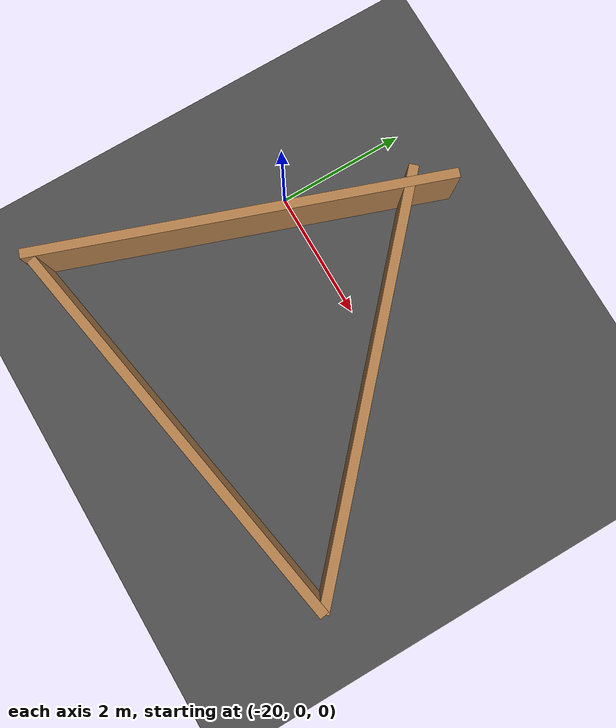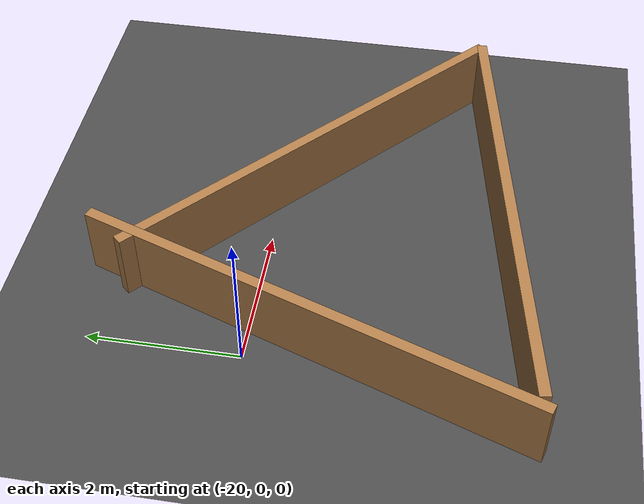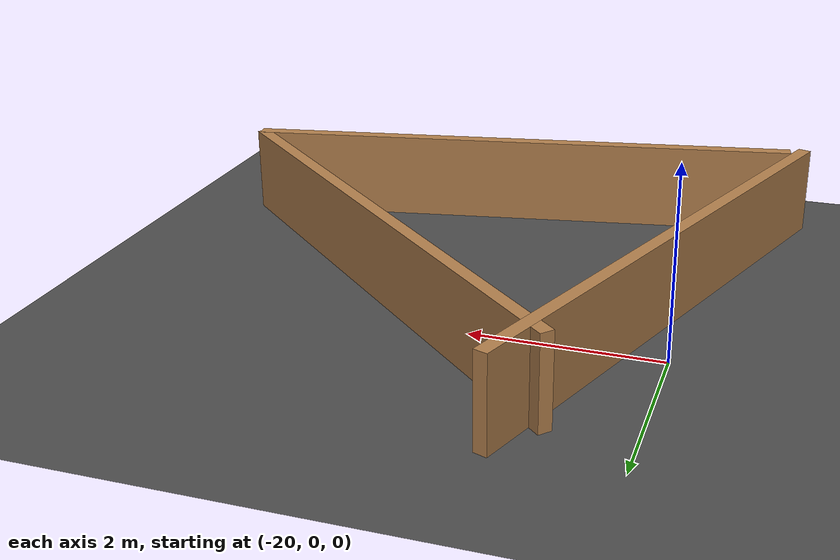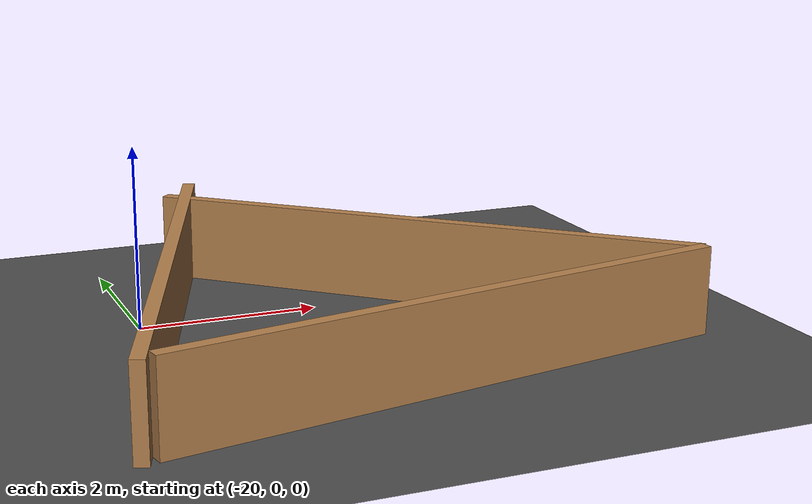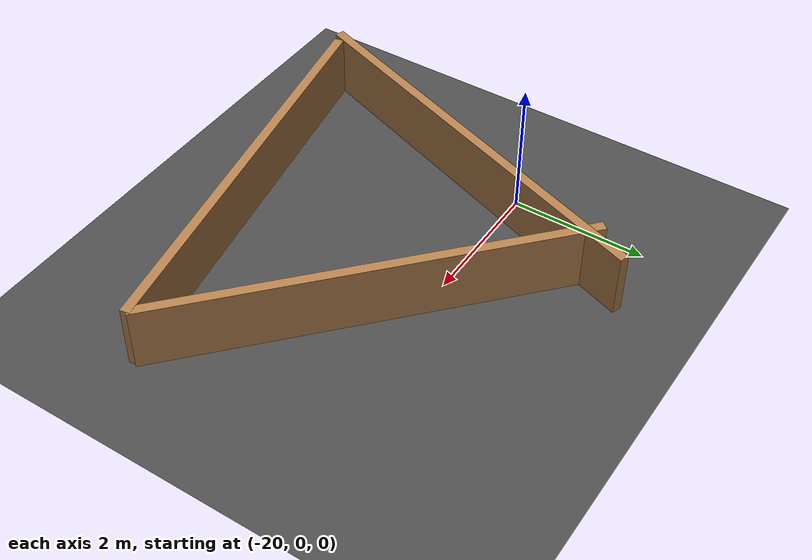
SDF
<sdf version="1.6">
 <world name="default">
  <model name="ground_plane">
   <static>1</static>
   <link name="link">
    <collision name="collision">
     <geometry><plane><normal>0 0 1</normal><size>100 100</size></plane></geometry>
     <surface><friction><ode><mu>100</mu><mu2>50</mu2></ode></friction></surface>
    </collision>
    <visual name="visual">
     <cast_shadows>0</cast_shadows>
     <geometry><plane><normal>0 0 1</normal><size>100 100</size></plane></geometry>
     <material>
      <script>
       <uri>model://asphalt_plane/materials/scripts</uri>
       <uri>model://asphalt_plane/materials/textures</uri>
       <name>vrc/asphalt</name>
      </script>
     </material>
    </visual>
    <velocity_decay><linear>0</linear><angular>0</angular></velocity_decay>
   </link>
  </model>
  <model name="unit_box_clone_0">
   <link name="link">
    <inertial>
     <mass>1</mass>
     <inertia>
      <ixx>0.166667</ixx>
      <ixy>0</ixy>
      <ixz>0</ixz>
      <iyy>0.166667</iyy>
      <iyz>0</iyz>
      <izz>0.166667</izz>
     </inertia>
    </inertial>
    <visual name="visual">
     <geometry><box><size>0.143826 6.27763 0.957801</size></box></geometry>
     <material>
      <script><name>Gazebo/Wood</name><uri>file://media/materials/scripts/gazebo.material</uri></script>
      <shader type="pixel"><normal_map>__default__</normal_map></shader>
      <ambient>1 1 1 1</ambient>
      <diffuse>1 1 1 1</diffuse>
      <specular>0.2 0.2 0.2 1</specular>
      <emissive>0 0 0 1</emissive>
     </material>
    </visual>
    <collision name="collision">
     <geometry><box><size>0.143826 6.27763 0.957801</size></box></geometry>
     <surface>
      <friction>
       <ode><mu>1</mu><mu2>1</mu2><fdir1>0 0 0</fdir1><slip1>0</slip1><slip2>0</slip2></ode>
       <torsional>
        <coefficient>1</coefficient>
        <patch_radius>0</patch_radius>
        <surface_radius>0</surface_radius>
        <use_patch_radius>1</use_patch_radius>
        <ode><slip>0</slip></ode>
       </torsional>
      </friction>
      <bounce><restitution_coefficient>0</restitution_coefficient><threshold>1e+06</threshold></bounce>
      <contact>
       <collide_without_contact>0</collide_without_contact>
       <collide_without_contact_bitmask>1</collide_without_contact_bitmask>
       <collide_bitmask>1</collide_bitmask>
       <ode>
        <soft_cfm>0</soft_cfm>
        <soft_erp>0.2</soft_erp>
        <kp>1e+13</kp>
        <kd>1</kd>
        <max_vel>0.01</max_vel>
        <min_depth>0</min_depth>
       </ode>
       <bullet>
        <split_impulse>1</split_impulse>
        <split_impulse_penetration_threshold>-0.01</split_impulse_penetration_threshold>
        <soft_cfm>0</soft_cfm>
        <soft_erp>0.2</soft_erp>
        <kp>1e+13</kp>
        <kd>1</kd>
       </bullet>
      </contact>
     </surface>
    </collision>
   </link>
   <static>1</static>
   <pose>-19.8553 -0.766235 0.549798 0.000381 0.000133 -0.339065</pose>
  </model>
  <model name="unit_box_clone_0_clone">
   <link name="link">
    <inertial>
     <mass>1</mass>
     <inertia>
      <ixx>0.166667</ixx>
      <ixy>0</ixy>
      <ixz>0</ixz>
      <iyy>0.166667</iyy>
      <iyz>0</iyz>
      <izz>0.166667</izz>
     </inertia>
    </inertial>
    <visual name="visual">
     <geometry><box><size>0.143826 6.27763 0.957801</size></box></geometry>
     <material>
      <script><name>Gazebo/Wood</name><uri>file://media/materials/scripts/gazebo.material</uri></script>
      <shader type="pixel"><normal_map>__default__</normal_map></shader>
      <ambient>1 1 1 1</ambient>
      <diffuse>1 1 1 1</diffuse>
      <specular>0.2 0.2 0.2 1</specular>
      <emissive>0 0 0 1</emissive>
     </material>
    </visual>
    <collision name="collision">
     <geometry><box><size>0.143826 6.27763 0.957801</size></box></geometry>
     <surface>
      <friction>
       <ode><mu>1</mu><mu2>1</mu2><fdir1>0 0 0</fdir1><slip1>0</slip1><slip2>0</slip2></ode>
       <torsional>
        <coefficient>1</coefficient>
        <patch_radius>0</patch_radius>
        <surface_radius>0</surface_radius>
        <use_patch_radius>1</use_patch_radius>
        <ode><slip>0</slip></ode>
       </torsional>
      </friction>
      <bounce><restitution_coefficient>0</restitution_coefficient><threshold>1e+06</threshold></bounce>
      <contact>
       <collide_without_contact>0</collide_without_contact>
       <collide_without_contact_bitmask>1</collide_without_contact_bitmask>
       <collide_bitmask>1</collide_bitmask>
       <ode>
        <soft_cfm>0</soft_cfm>
        <soft_erp>0.2</soft_erp>
        <kp>1e+13</kp>
        <kd>1</kd>
        <max_vel>0.01</max_vel>
        <min_depth>0</min_depth>
       </ode>
       <bullet>
        <split_impulse>1</split_impulse>
        <split_impulse_penetration_threshold>-0.01</split_impulse_penetration_threshold>
        <soft_cfm>0</soft_cfm>
        <soft_erp>0.2</soft_erp>
        <kp>1e+13</kp>
        <kd>1</kd>
       </bullet>
      </contact>
     </surface>
    </collision>
   </link>
   <static>1</static>
   <pose>-17.6574 -3.07115 0.549798 7.2e-05 0.000397 -1.39485</pose>
  </model>
  <model name="unit_box_clone_0_clone_0">
   <link name="link">
    <inertial>
     <mass>1</mass>
     <inertia>
      <ixx>0.166667</ixx>
      <ixy>0</ixy>
      <ixz>0</ixz>
      <iyy>0.166667</iyy>
      <iyz>0</iyz>
      <izz>0.166667</izz>
     </inertia>
    </inertial>
    <visual name="visual">
     <geometry><box><size>0.143826 6.27763 0.957801</size></box></geometry>
     <material>
      <script><name>Gazebo/Wood</name><uri>file://media/materials/scripts/gazebo.material</uri></script>
      <shader type="pixel"><normal_map>__default__</normal_map></shader>
      <ambient>1 1 1 1</ambient>
      <diffuse>1 1 1 1</diffuse>
      <specular>0.2 0.2 0.2 1</specular>
      <emissive>0 0 0 1</emissive>
     </material>
    </visual>
    <collision name="collision">
     <geometry><box><size>0.143826 6.27763 0.957801</size></box></geometry>
     <surface>
      <friction>
       <ode><mu>1</mu><mu2>1</mu2><fdir1>0 0 0</fdir1><slip1>0</slip1><slip2>0</slip2></ode>
       <torsional>
        <coefficient>1</coefficient>
        <patch_radius>0</patch_radius>
        <surface_radius>0</surface_radius>
        <use_patch_radius>1</use_patch_radius>
        <ode><slip>0</slip></ode>
       </torsional>
      </friction>
      <bounce><restitution_coefficient>0</restitution_coefficient><threshold>1e+06</threshold></bounce>
      <contact>
       <collide_without_contact>0</collide_without_contact>
       <collide_without_contact_bitmask>1</collide_without_contact_bitmask>
       <collide_bitmask>1</collide_bitmask>
       <ode>
        <soft_cfm>0</soft_cfm>
        <soft_erp>0.2</soft_erp>
        <kp>1e+13</kp>
        <kd>1</kd>
        <max_vel>0.01</max_vel>
        <min_depth>0</min_depth>
       </ode>
       <bullet>
        <split_impulse>1</split_impulse>
        <split_impulse_penetration_threshold>-0.01</split_impulse_penetration_threshold>
        <soft_cfm>0</soft_cfm>
        <soft_erp>0.2</soft_erp>
        <kp>1e+13</kp>
        <kd>1</kd>
       </bullet>
      </contact>
     </surface>
    </collision>
   </link>
   <static>1</static>
   <pose>-16.9103 -0.411732 0.549798 0.00027 -0.0003 0.83341</pose>
  </model>
 </world>
</sdf>
